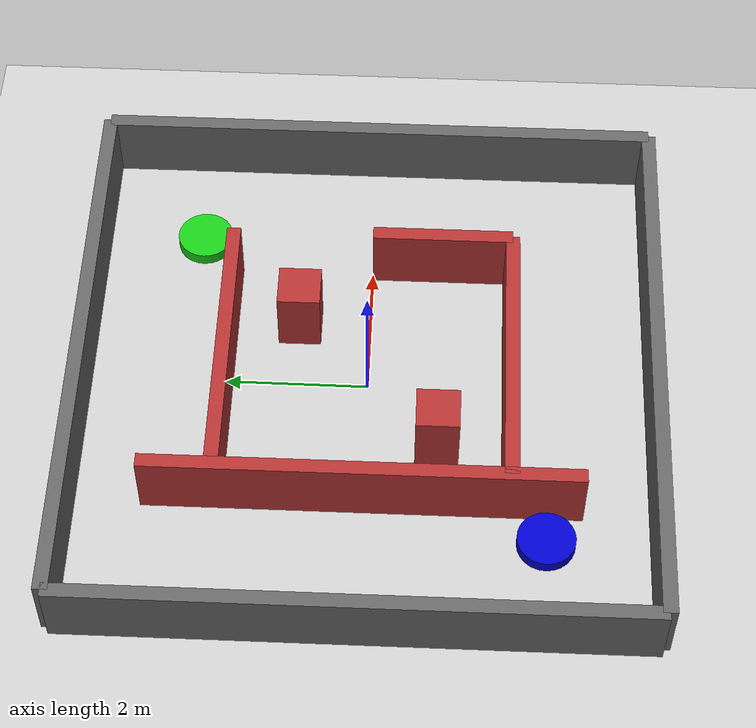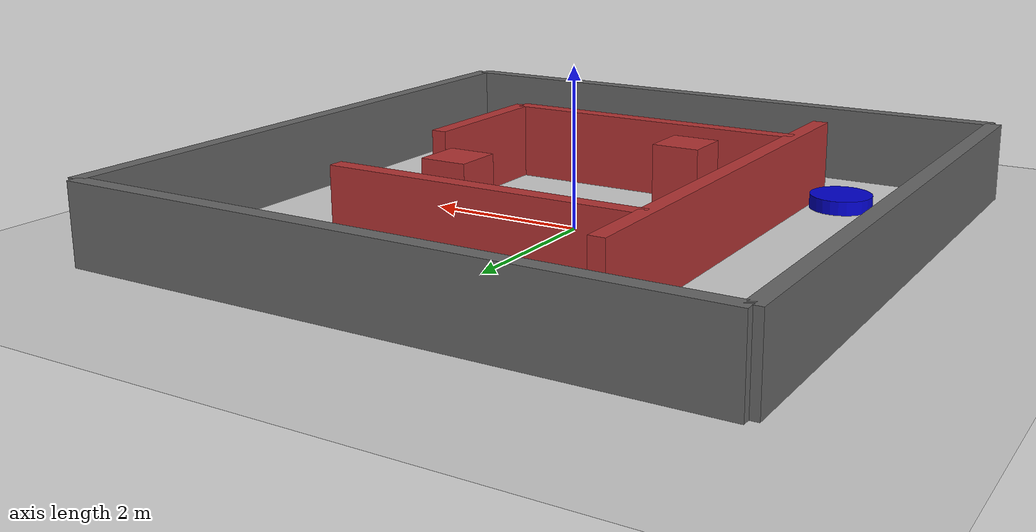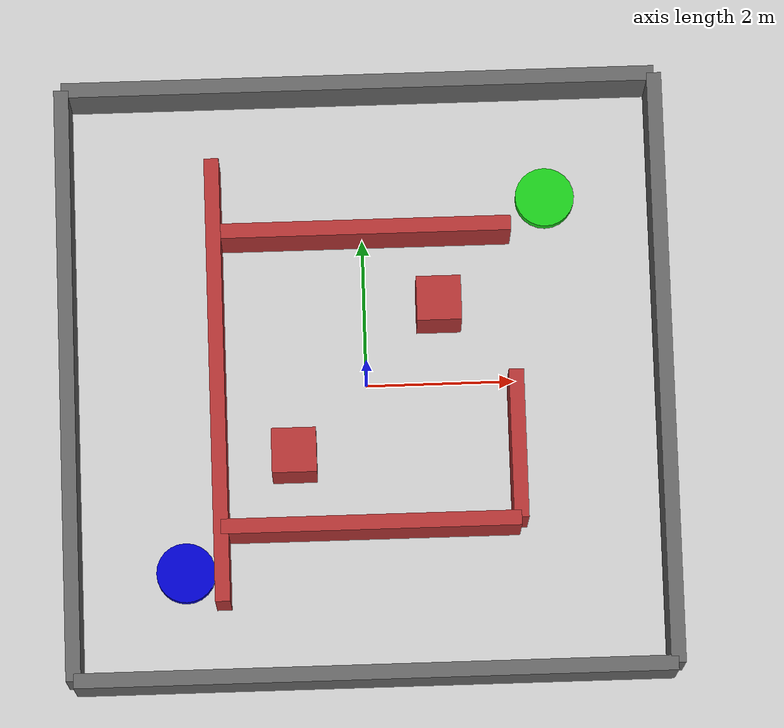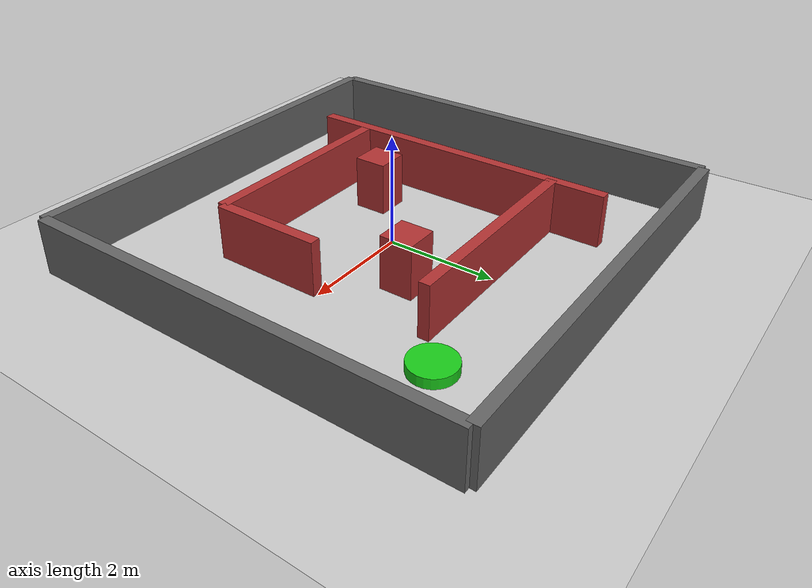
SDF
<?xml version="1.0" ?>
<sdf version="1.6">
  <world name="RL_MazeWorld">
    <!-- A global light source -->
    <include>
      <uri>model://sun</uri>
    </include>

    <!-- A ground plane -->
    <include>
      <uri>model://ground_plane</uri>
    </include>

    <!-- Ground texture for better visualization -->
    <model name="maze_floor">
      <static>true</static>
      <pose>0 0 0.01 0 0 0</pose>
      <link name="link">
        <visual name="visual">
          <geometry>
            <box>
              <size>8 8 0.02</size>
            </box>
          </geometry>
          <material>
            <ambient>0.8 0.8 0.8 1</ambient>
            <diffuse>0.8 0.8 0.8 1</diffuse>
          </material>
        </visual>
        <collision name="collision">
          <geometry>
            <box>
              <size>8 8 0.02</size>
            </box>
          </geometry>
        </collision>
      </link>
    </model>

    <!-- START MARKER -->
    <model name="start_marker">
      <static>true</static>
      <pose>-2.5 -2.5 0.1 0 0 0</pose>
      <link name="link">
        <collision name="collision">
          <geometry>
            <cylinder>
              <radius>0.4</radius>
              <length>0.2</length>
            </cylinder>
          </geometry>
        </collision>
        <visual name="visual">
          <geometry>
            <cylinder>
              <radius>0.4</radius>
              <length>0.2</length>
            </cylinder>
          </geometry>
          <material>
            <ambient>0 0 0.8 1</ambient>
            <diffuse>0 0 0.8 1</diffuse>
            <emissive>0 0 0.5 1</emissive>
          </material>
        </visual>
      </link>
    </model>

    <!-- GOAL MARKER -->
    <model name="goal_marker">
      <static>true</static>
      <pose>2.5 2.5 0.1 0 0 0</pose>
      <link name="link">
        <collision name="collision">
          <geometry>
            <cylinder>
              <radius>0.4</radius>
              <length>0.2</length>
            </cylinder>
          </geometry>
        </collision>
        <visual name="visual">
          <geometry>
            <cylinder>
              <radius>0.4</radius>
              <length>0.2</length>
            </cylinder>
          </geometry>
          <material>
            <ambient>0.1 0.8 0.1 1</ambient>
            <diffuse>0.1 0.8 0.1 1</diffuse>
            <emissive>0 0.5 0 1</emissive>
          </material>
        </visual>
      </link>
    </model>

    <!-- MAZE WALLS -->
    <!-- Border walls -->
    <model name="border_wall_north">
      <static>true</static>
      <pose>0 4 0.5 0 0 0</pose>
      <link name="link">
        <collision name="collision">
          <geometry>
            <box>
              <size>8 0.2 1</size>
            </box>
          </geometry>
        </collision>
        <visual name="visual">
          <geometry>
            <box>
              <size>8 0.2 1</size>
            </box>
          </geometry>
          <material>
            <ambient>0.4 0.4 0.4 1</ambient>
            <diffuse>0.4 0.4 0.4 1</diffuse>
          </material>
        </visual>
      </link>
    </model>

    <model name="border_wall_south">
      <static>true</static>
      <pose>0 -4 0.5 0 0 0</pose>
      <link name="link">
        <collision name="collision">
          <geometry>
            <box>
              <size>8 0.2 1</size>
            </box>
          </geometry>
        </collision>
        <visual name="visual">
          <geometry>
            <box>
              <size>8 0.2 1</size>
            </box>
          </geometry>
          <material>
            <ambient>0.4 0.4 0.4 1</ambient>
            <diffuse>0.4 0.4 0.4 1</diffuse>
          </material>
        </visual>
      </link>
    </model>

    <model name="border_wall_east">
      <static>true</static>
      <pose>4 0 0.5 0 0 0</pose>
      <link name="link">
        <collision name="collision">
          <geometry>
            <box>
              <size>0.2 8 1</size>
            </box>
          </geometry>
        </collision>
        <visual name="visual">
          <geometry>
            <box>
              <size>0.2 8 1</size>
            </box>
          </geometry>
          <material>
            <ambient>0.4 0.4 0.4 1</ambient>
            <diffuse>0.4 0.4 0.4 1</diffuse>
          </material>
        </visual>
      </link>
    </model>

    <model name="border_wall_west">
      <static>true</static>
      <pose>-4 0 0.5 0 0 0</pose>
      <link name="link">
        <collision name="collision">
          <geometry>
            <box>
              <size>0.2 8 1</size>
            </box>
          </geometry>
        </collision>
        <visual name="visual">
          <geometry>
            <box>
              <size>0.2 8 1</size>
            </box>
          </geometry>
          <material>
            <ambient>0.4 0.4 0.4 1</ambient>
            <diffuse>0.4 0.4 0.4 1</diffuse>
          </material>
        </visual>
      </link>
    </model>

    <!-- Internal maze walls - redesigned for better pathfinding -->
    <model name="maze_wall1">
      <static>true</static>
      <pose>-2 0 0.5 0 0 0</pose>
      <link name="link">
        <collision name="collision">
          <geometry>
            <box>
              <size>0.2 6 1</size>
            </box>
          </geometry>
        </collision>
        <visual name="visual">
          <geometry>
            <box>
              <size>0.2 6 1</size>
            </box>
          </geometry>
          <material>
            <ambient>0.7 0.2 0.2 1</ambient>
            <diffuse>0.7 0.2 0.2 1</diffuse>
          </material>
        </visual>
      </link>
    </model>

    <model name="maze_wall2">
      <static>true</static>
      <pose>0 -2 0.5 0 0 0</pose>
      <link name="link">
        <collision name="collision">
          <geometry>
            <box>
              <size>4 0.2 1</size>
            </box>
          </geometry>
        </collision>
        <visual name="visual">
          <geometry>
            <box>
              <size>4 0.2 1</size>
            </box>
          </geometry>
          <material>
            <ambient>0.7 0.2 0.2 1</ambient>
            <diffuse>0.7 0.2 0.2 1</diffuse>
          </material>
        </visual>
      </link>
    </model>

    <model name="maze_wall3">
      <static>true</static>
      <pose>0 2 0.5 0 0 0</pose>
      <link name="link">
        <collision name="collision">
          <geometry>
            <box>
              <size>4 0.2 1</size>
            </box>
          </geometry>
        </collision>
        <visual name="visual">
          <geometry>
            <box>
              <size>4 0.2 1</size>
            </box>
          </geometry>
          <material>
            <ambient>0.7 0.2 0.2 1</ambient>
            <diffuse>0.7 0.2 0.2 1</diffuse>
          </material>
        </visual>
      </link>
    </model>

    <model name="maze_wall4">
      <static>true</static>
      <pose>2 -1 0.5 0 0 0</pose>
      <link name="link">
        <collision name="collision">
          <geometry>
            <box>
              <size>0.2 2 1</size>
            </box>
          </geometry>
        </collision>
        <visual name="visual">
          <geometry>
            <box>
              <size>0.2 2 1</size>
            </box>
          </geometry>
          <material>
            <ambient>0.7 0.2 0.2 1</ambient>
            <diffuse>0.7 0.2 0.2 1</diffuse>
          </material>
        </visual>
      </link>
    </model>

    <!-- Obstacle blocks -->
    <model name="obstacle_block1">
      <static>true</static>
      <pose>-1 -1 0.5 0 0 0</pose>
      <link name="link">
        <collision name="collision">
          <geometry>
            <box>
              <size>0.6 0.6 1</size>
            </box>
          </geometry>
        </collision>
        <visual name="visual">
          <geometry>
            <box>
              <size>0.6 0.6 1</size>
            </box>
          </geometry>
          <material>
            <ambient>0.7 0.2 0.2 1</ambient>
            <diffuse>0.7 0.2 0.2 1</diffuse>
          </material>
        </visual>
      </link>
    </model>

    <model name="obstacle_block2">
      <static>true</static>
      <pose>1 1 0.5 0 0 0</pose>
      <link name="link">
        <collision name="collision">
          <geometry>
            <box>
              <size>0.6 0.6 1</size>
            </box>
          </geometry>
        </collision>
        <visual name="visual">
          <geometry>
            <box>
              <size>0.6 0.6 1</size>
            </box>
          </geometry>
          <material>
            <ambient>0.7 0.2 0.2 1</ambient>
            <diffuse>0.7 0.2 0.2 1</diffuse>
          </material>
        </visual>
      </link>
    </model>

    <!-- Light posts around the maze -->
    <light type="point" name="light1">
      <pose>-2.5 -2.5 2 0 0 0</pose>
      <diffuse>0.5 0.5 0.5 1</diffuse>
      <specular>0.1 0.1 0.1 1</specular>
      <attenuation>
        <range>20</range>
        <constant>0.5</constant>
        <linear>0.01</linear>
        <quadratic>0.001</quadratic>
      </attenuation>
      <cast_shadows>true</cast_shadows>
    </light>

    <light type="point" name="light2">
      <pose>2.5 2.5 2 0 0 0</pose>
      <diffuse>0.5 0.5 0.5 1</diffuse>
      <specular>0.1 0.1 0.1 1</specular>
      <attenuation>
        <range>20</range>
        <constant>0.5</constant>
        <linear>0.01</linear>
        <quadratic>0.001</quadratic>
      </attenuation>
      <cast_shadows>true</cast_shadows>
    </light>

    <!-- Physics settings -->
    <physics type="ode">
      <real_time_update_rate>1000.0</real_time_update_rate>
      <max_step_size>0.001</max_step_size>
      <real_time_factor>1</real_time_factor>
      <ode>
        <solver>
          <type>quick</type>
          <iters>150</iters>
          <precon_iters>0</precon_iters>
          <sor>1.400000</sor>
          <use_dynamic_moi_rescaling>1</use_dynamic_moi_rescaling>
        </solver>
        <constraints>
          <cfm>0.00001</cfm>
          <erp>0.2</erp>
          <contact_max_correcting_vel>2000.000000</contact_max_correcting_vel>
          <contact_surface_layer>0.01000</contact_surface_layer>
        </constraints>
      </ode>
    </physics>
  </world>
</sdf>
